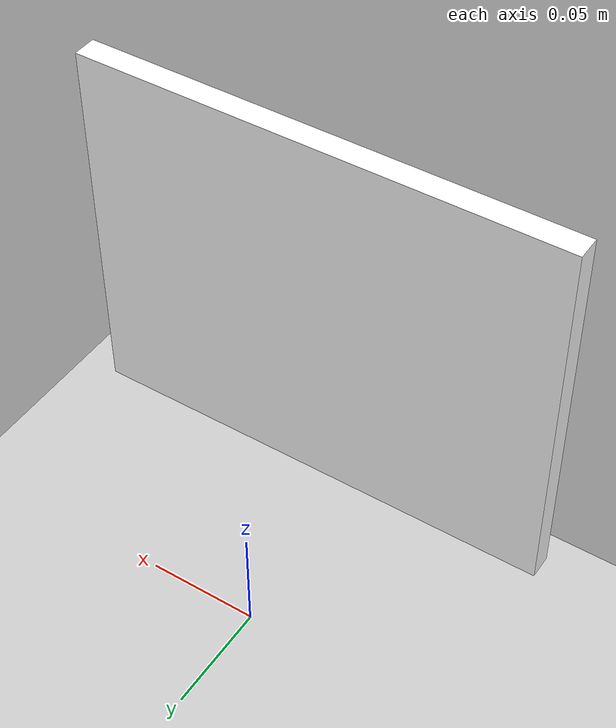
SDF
<?xml version="1.0" ?>
<sdf version="1.4">

  <world name="default">
    <include>
      <uri>model://ground_plane</uri>
    </include>

    <include>
      <uri>model://ball</uri>
      <pose>-0.012754 -0.034496 0.155751 0 0 0</pose>
    </include>

    <!-- Global light source -->
    <include>
      <uri>model://sun</uri>
    </include>

    <!-- Default camera location -->
    <gui>
      <camera name="user_camera">
        <pose>0.419532 -0.360341 0.524924 0 0.663644 2.344196</pose> <!-- god view -->
      </camera>
    </gui>

  </world>
</sdf>

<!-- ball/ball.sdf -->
<sdf version='1.4'>
    <model name="ball">
        <link name='ball_body'>
            <pose>0 0 0 0 0 0</pose>
            <inertial>
                <inertia>
                    <ixx>1e6</ixx>
                    <ixy>0</ixy>
                    <ixz>0</ixz>
                    <iyy>1e6</iyy>
                    <iyz>0</iyz>
                    <izz>1e6</izz>
                </inertia>
                <mass>1e6</mass>
            </inertial>
            <collision name='collision'>
                <pose>0 0 0.04 0 0 0</pose>
                <geometry>
                    <box>
                    <size>0.2 0.01 0.16</size>
                    </box>
                </geometry>
            </collision>
            <visual name='visual'>
                <geometry>
                    <box>
                    <size>0.2 0.01 0.16</size>
                    </box>
                </geometry>
                <material>
                    <ambient>0 0 1 1</ambient>
                    <diffuse>1 1 1 1</diffuse>
                    <specular>0 0.5 0 0</specular>
                    <emissive>0 0 0 1</emissive>
                </material>
            </visual>
        </link>
    </model>
</sdf>
